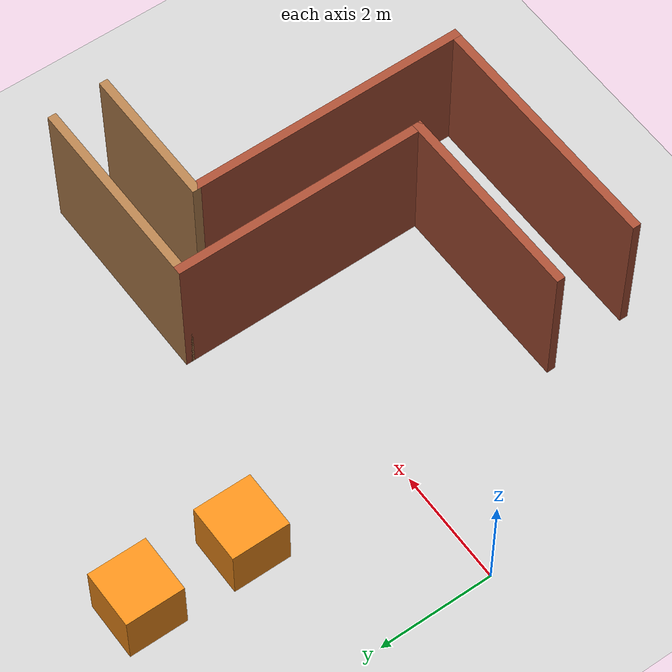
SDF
<sdf version="1.7">
 <world name="default">
  <light name="sun" type="directional">
   <pose>0 0 10 0 -0 0</pose>
   <diffuse>0.8 0.8 0.8 1</diffuse>
   <specular>0.2 0.2 0.2 1</specular>
   <attenuation>
    <range>1000</range>
    <constant>0.9</constant>
    <linear>0.01</linear>
    <quadratic>0.001</quadratic>
   </attenuation>
   <direction>-0.5 0.1 -0.9</direction>
   <spot><inner_angle>0</inner_angle><outer_angle>0</outer_angle><falloff>0</falloff></spot>
  </light>
  <model name="ground_plane">
   <static>1</static>
   <link name="link">
    <collision name="collision">
     <geometry><plane><normal>0 0 1</normal><size>100 100</size></plane></geometry>
     <surface>
      <contact><collide_bitmask>65535</collide_bitmask></contact>
      <friction><ode><mu>100</mu><mu2>50</mu2></ode></friction>
     </surface>
    </collision>
    <visual name="visual">
     <cast_shadows>0</cast_shadows>
     <geometry><plane><normal>0 0 1</normal><size>100 100</size></plane></geometry>
     <material>
      <script><uri>file://media/materials/scripts/gazebo.material</uri><name>Gazebo/Grey</name></script>
     </material>
    </visual>
   </link>
  </model>
  <gravity>0 0 -9.8</gravity>
  <magnetic_field>6e-06 2.3e-05 -4.2e-05</magnetic_field>
  <atmosphere type="adiabatic"/>
  <physics type="ode">
   <max_step_size>0.001</max_step_size>
   <real_time_factor>1</real_time_factor>
   <real_time_update_rate>1000</real_time_update_rate>
  </physics>
  <scene><ambient>0.4 0.4 0.4 1</ambient><background>0.7 0.7 0.7 1</background><shadows>1</shadows></scene>
  <audio><device>default</device></audio>
  <spherical_coordinates>
   <surface_model>EARTH_WGS84</surface_model>
   <latitude_deg>0</latitude_deg>
   <longitude_deg>0</longitude_deg>
   <elevation>0</elevation>
   <heading_deg>0</heading_deg>
  </spherical_coordinates>
  <model name="ziczac">
   <pose>6.59761 -1.45816 0 0 0 -1.56566</pose>
   <link name="Wall_14">
    <collision name="Wall_14_Collision">
     <geometry><box><size>3.5 0.15 2.5</size></box></geometry>
     <pose>0 0 1.25 0 -0 0</pose>
    </collision>
    <visual name="Wall_14_Visual">
     <pose>0 0 1.25 0 -0 0</pose>
     <geometry><box><size>3.5 0.15 2.5</size></box></geometry>
     <material>
      <script><uri>file://media/materials/scripts/gazebo.material</uri><name>Gazebo/Wood</name></script>
      <ambient>1 1 1 1</ambient>
     </material>
     <meta><layer>0</layer></meta>
    </visual>
    <pose>-2.94662 0.764752 0 0 -0 -1.5708</pose>
   </link>
   <link name="Wall_15">
    <collision name="Wall_15_Collision">
     <geometry><box><size>4.5 0.15 2.5</size></box></geometry>
     <pose>0 0 1.25 0 -0 0</pose>
    </collision>
    <visual name="Wall_15_Visual">
     <pose>0 0 1.25 0 -0 0</pose>
     <geometry><box><size>4.5 0.15 2.5</size></box></geometry>
     <material>
      <script><uri>file://media/materials/scripts/gazebo.material</uri><name>Gazebo/Bricks</name></script>
      <ambient>1 1 1 1</ambient>
     </material>
     <meta><layer>0</layer></meta>
    </visual>
    <pose>-0.771616 -0.910248 0 0 -0 0</pose>
   </link>
   <link name="Wall_16">
    <collision name="Wall_16_Collision">
     <geometry><box><size>3.5 0.15 2.5</size></box></geometry>
     <pose>0 0 1.25 0 -0 0</pose>
    </collision>
    <visual name="Wall_16_Visual">
     <pose>0 0 1.25 0 -0 0</pose>
     <geometry><box><size>3.5 0.15 2.5</size></box></geometry>
     <material>
      <script><uri>file://media/materials/scripts/gazebo.material</uri><name>Gazebo/Bricks</name></script>
      <ambient>1 1 1 1</ambient>
     </material>
     <meta><layer>0</layer></meta>
    </visual>
    <pose>1.40338 -2.58525 0 0 -0 -1.5708</pose>
   </link>
   <link name="Wall_18">
    <collision name="Wall_18_Collision">
     <geometry><box><size>2.5 0.15 2.5</size></box></geometry>
     <pose>0 0 1.25 0 -0 0</pose>
    </collision>
    <visual name="Wall_18_Visual">
     <pose>0 0 1.25 0 -0 0</pose>
     <geometry><box><size>2.5 0.15 2.5</size></box></geometry>
     <material>
      <script><uri>file://media/materials/scripts/gazebo.material</uri><name>Gazebo/Wood</name></script>
      <ambient>1 1 1 1</ambient>
     </material>
     <meta><layer>0</layer></meta>
    </visual>
    <pose>-1.96241 1.34455 0 0 -0 -1.5708</pose>
   </link>
   <link name="Wall_19">
    <collision name="Wall_19_Collision">
     <geometry><box><size>5 0.15 2.5</size></box></geometry>
     <pose>0 0 1.25 0 -0 0</pose>
    </collision>
    <visual name="Wall_19_Visual">
     <pose>0 0 1.25 0 -0 0</pose>
     <geometry><box><size>5 0.15 2.5</size></box></geometry>
     <material>
      <script><uri>file://media/materials/scripts/gazebo.material</uri><name>Gazebo/Bricks</name></script>
      <ambient>1 1 1 1</ambient>
     </material>
     <meta><layer>0</layer></meta>
    </visual>
    <pose>0.462591 0.169553 0 0 -0 0</pose>
   </link>
   <link name="Wall_20">
    <collision name="Wall_20_Collision">
     <geometry><box><size>4.5 0.15 2.5</size></box></geometry>
     <pose>0 0 1.25 0 -0 0</pose>
    </collision>
    <visual name="Wall_20_Visual">
     <pose>0 0 1.25 0 -0 0</pose>
     <geometry><box><size>4.5 0.15 2.5</size></box></geometry>
     <material>
      <script><uri>file://media/materials/scripts/gazebo.material</uri><name>Gazebo/Bricks</name></script>
      <ambient>1 1 1 1</ambient>
     </material>
     <meta><layer>0</layer></meta>
    </visual>
    <pose>2.88759 -2.00545 0 0 -0 -1.5708</pose>
   </link>
   <static>1</static>
  </model>
  <model name="orange_box">
   <link name="link">
    <inertial>
     <mass>10</mass>
     <inertia><ixx>1.66667</ixx><ixy>0</ixy><ixz>0</ixz><iyy>1.66667</iyy><iyz>0</iyz><izz>1.66667</izz></inertia>
    </inertial>
    <visual name="visual">
     <geometry><box><size>1 1 1</size></box></geometry>
     <material>
      <script><name>Gazebo/Orange</name><uri>file://media/materials/scripts/gazebo.material</uri></script>
      <shader type="pixel"><normal_map>__default__</normal_map></shader>
      <emissive>0 0 0 1</emissive>
      <ambient>1 0.3 0.1 1</ambient>
      <diffuse>0 0.7 0.9 1</diffuse>
      <specular>0.01 0.01 0.01 1</specular>
     </material>
    </visual>
    <collision name="collision">
     <geometry><box><size>1 1 1</size></box></geometry>
     <surface>
      <friction>
       <ode><mu>1</mu><mu2>1</mu2><fdir1>0 0 0</fdir1><slip1>0</slip1><slip2>0</slip2></ode>
       <torsional>
        <coefficient>1</coefficient>
        <patch_radius>0</patch_radius>
        <surface_radius>0</surface_radius>
        <use_patch_radius>1</use_patch_radius>
        <ode><slip>0</slip></ode>
       </torsional>
      </friction>
      <bounce><restitution_coefficient>0</restitution_coefficient><threshold>1e+06</threshold></bounce>
      <contact>
       <collide_without_contact>0</collide_without_contact>
       <collide_without_contact_bitmask>1</collide_without_contact_bitmask>
       <collide_bitmask>1</collide_bitmask>
       <ode>
        <soft_cfm>0</soft_cfm>
        <soft_erp>0.2</soft_erp>
        <kp>1e+13</kp>
        <kd>1</kd>
        <max_vel>0.01</max_vel>
        <min_depth>0</min_depth>
       </ode>
       <bullet>
        <split_impulse>1</split_impulse>
        <split_impulse_penetration_threshold>-0.01</split_impulse_penetration_threshold>
        <soft_cfm>0</soft_cfm>
        <soft_erp>0.2</soft_erp>
        <kp>1e+13</kp>
        <kd>1</kd>
       </bullet>
      </contact>
     </surface>
    </collision>
   </link>
   <static>0</static>
   <pose>2.49379 4.4912 0.5 0 -0 0</pose>
  </model>
  <model name="orange_box_clone">
   <link name="link">
    <inertial>
     <mass>10</mass>
     <inertia><ixx>1.66667</ixx><ixy>0</ixy><ixz>0</ixz><iyy>1.66667</iyy><iyz>0</iyz><izz>1.66667</izz></inertia>
    </inertial>
    <visual name="visual">
     <geometry><box><size>1 1 1</size></box></geometry>
     <material>
      <script><name>Gazebo/Orange</name><uri>file://media/materials/scripts/gazebo.material</uri></script>
      <shader type="pixel"><normal_map>__default__</normal_map></shader>
      <emissive>0 0 0 1</emissive>
      <ambient>1 0.3 0.1 1</ambient>
      <diffuse>0 0.7 0.9 1</diffuse>
      <specular>0.01 0.01 0.01 1</specular>
     </material>
    </visual>
    <collision name="collision">
     <geometry><box><size>1 1 1</size></box></geometry>
     <surface>
      <friction>
       <ode><mu>1</mu><mu2>1</mu2><fdir1>0 0 0</fdir1><slip1>0</slip1><slip2>0</slip2></ode>
       <torsional>
        <coefficient>1</coefficient>
        <patch_radius>0</patch_radius>
        <surface_radius>0</surface_radius>
        <use_patch_radius>1</use_patch_radius>
        <ode><slip>0</slip></ode>
       </torsional>
      </friction>
      <bounce><restitution_coefficient>0</restitution_coefficient><threshold>1e+06</threshold></bounce>
      <contact>
       <collide_without_contact>0</collide_without_contact>
       <collide_without_contact_bitmask>1</collide_without_contact_bitmask>
       <collide_bitmask>1</collide_bitmask>
       <ode>
        <soft_cfm>0</soft_cfm>
        <soft_erp>0.2</soft_erp>
        <kp>1e+13</kp>
        <kd>1</kd>
        <max_vel>0.01</max_vel>
        <min_depth>0</min_depth>
       </ode>
       <bullet>
        <split_impulse>1</split_impulse>
        <split_impulse_penetration_threshold>-0.01</split_impulse_penetration_threshold>
        <soft_cfm>0</soft_cfm>
        <soft_erp>0.2</soft_erp>
        <kp>1e+13</kp>
        <kd>1</kd>
       </bullet>
      </contact>
     </surface>
    </collision>
   </link>
   <static>0</static>
   <pose>2.47652 2.67888 0.5 0 -0 0</pose>
  </model>
 </world>
</sdf>
